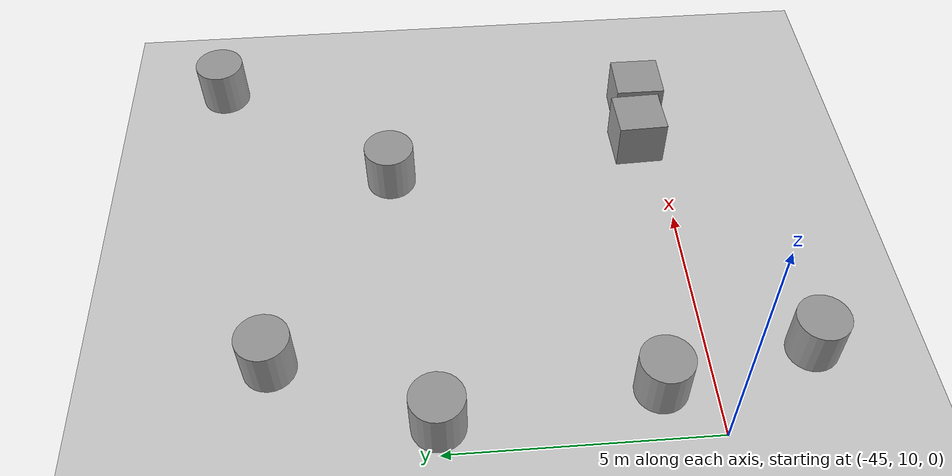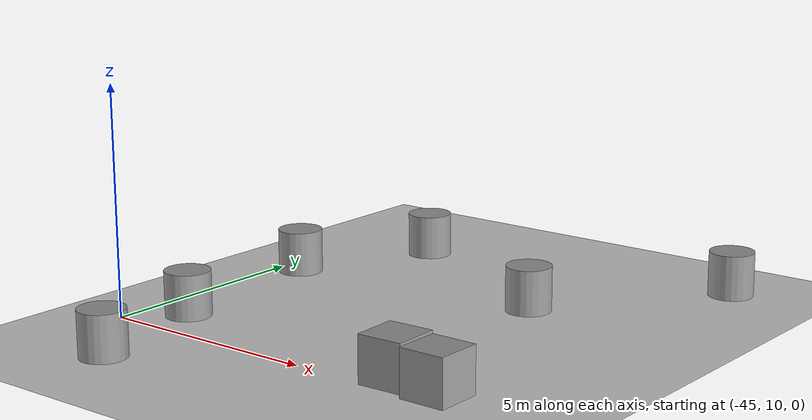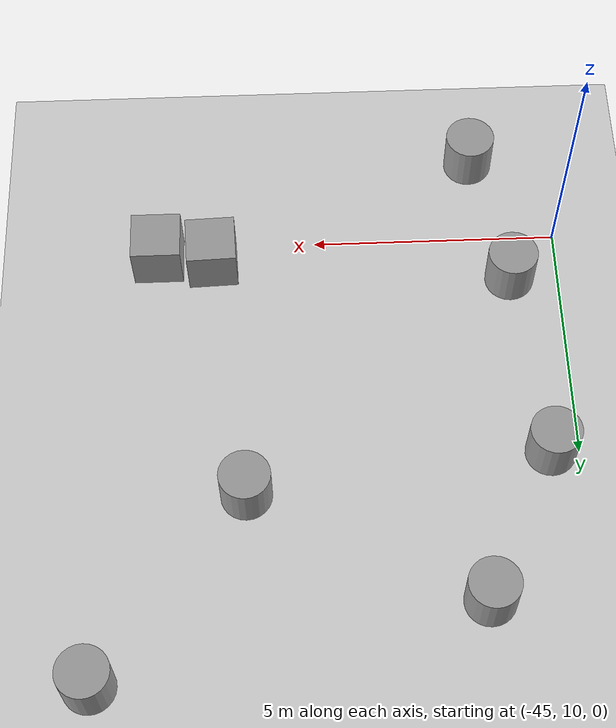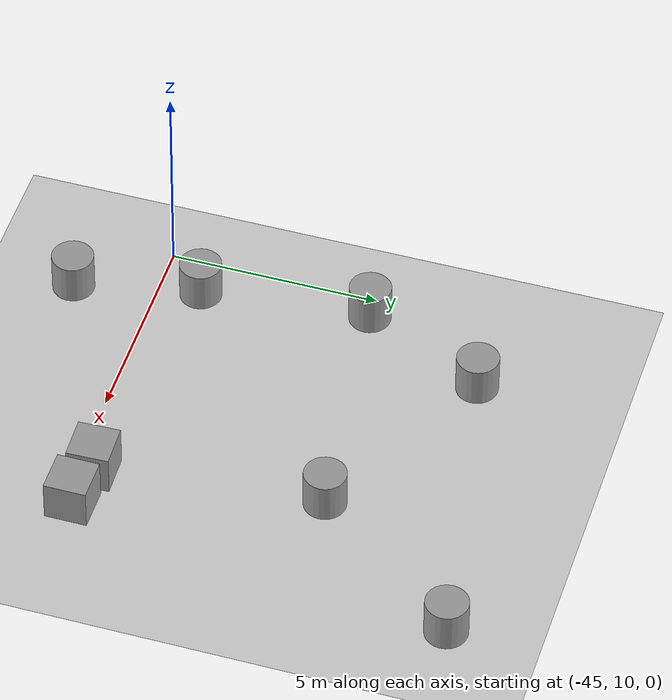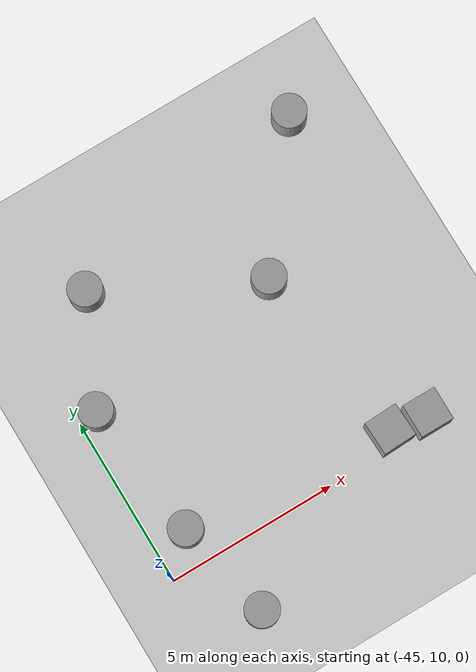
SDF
<sdf version="1.6">
 <world name="default">
  <model name="ground_plane">
   <static>1</static>
   <link name="link">
    <collision name="collision">
     <geometry><plane><normal>0 0 1</normal><size>100 100</size></plane></geometry>
     <surface><friction><ode><mu>100</mu><mu2>50</mu2></ode></friction></surface>
    </collision>
    <visual name="visual">
     <cast_shadows>0</cast_shadows>
     <geometry><plane><normal>0 0 1</normal><size>100 100</size></plane></geometry>
     <material>
      <script><uri>file://media/materials/scripts/gazebo.material</uri><name>Gazebo/Grey</name></script>
     </material>
    </visual>
   </link>
  </model>
  <model name="unit_cylinder_11_clone_19">
   <pose>-35.6542 19.3672 0.500501 3e-06 -0 -0.000386</pose>
   <link name="link">
    <inertial>
     <mass>1</mass>
     <inertia><ixx>0.145833</ixx><ixy>0</ixy><ixz>0</ixz><iyy>0.145833</iyy><iyz>0</iyz><izz>0.125</izz></inertia>
    </inertial>
    <collision name="collision">
     <geometry><cylinder><radius>0.5</radius><length>1</length></cylinder></geometry>
    </collision>
    <visual name="visual">
     <geometry><cylinder><radius>0.5</radius><length>1</length></cylinder></geometry>
     <material>
      <script><name>Gazebo/Grey</name><uri>file://media/materials/scripts/gazebo.material</uri></script>
     </material>
    </visual>
   </link>
  </model>
  <model name="unit_cylinder_11_clone_20">
   <pose>-38.521 15.7062 0.5005 0 0 -3.4e-05</pose>
   <link name="link">
    <inertial>
     <mass>1</mass>
     <inertia><ixx>0.145833</ixx><ixy>0</ixy><ixz>0</ixz><iyy>0.145833</iyy><iyz>0</iyz><izz>0.125</izz></inertia>
    </inertial>
    <collision name="collision">
     <geometry><cylinder><radius>0.5</radius><length>1</length></cylinder></geometry>
    </collision>
    <visual name="visual">
     <geometry><cylinder><radius>0.5</radius><length>1</length></cylinder></geometry>
     <material>
      <script><name>Gazebo/Grey</name><uri>file://media/materials/scripts/gazebo.material</uri></script>
     </material>
    </visual>
   </link>
  </model>
  <model name="unit_cylinder_11_clone_27">
   <pose>-43.0002 18 0.500489 -2e-06 -0 -0.000355</pose>
   <link name="link">
    <inertial>
     <mass>1</mass>
     <inertia><ixx>0.145833</ixx><ixy>0</ixy><ixz>0</ixz><iyy>0.145833</iyy><iyz>0</iyz><izz>0.125</izz></inertia>
    </inertial>
    <collision name="collision">
     <geometry><cylinder><radius>0.5</radius><length>1</length></cylinder></geometry>
    </collision>
    <visual name="visual">
     <geometry><cylinder><radius>0.5</radius><length>1</length></cylinder></geometry>
     <material>
      <script><name>Gazebo/Grey</name><uri>file://media/materials/scripts/gazebo.material</uri></script>
     </material>
    </visual>
   </link>
  </model>
  <model name="unit_cylinder_11_clone_28">
   <pose>-44.4366 15.0001 0.50049 -0 -0 -3.2e-05</pose>
   <link name="link">
    <inertial>
     <mass>1</mass>
     <inertia><ixx>0.145833</ixx><ixy>0</ixy><ixz>0</ixz><iyy>0.145833</iyy><iyz>0</iyz><izz>0.125</izz></inertia>
    </inertial>
    <collision name="collision">
     <geometry><cylinder><radius>0.5</radius><length>1</length></cylinder></geometry>
    </collision>
    <visual name="visual">
     <geometry><cylinder><radius>0.5</radius><length>1</length></cylinder></geometry>
     <material>
      <script><name>Gazebo/Grey</name><uri>file://media/materials/scripts/gazebo.material</uri></script>
     </material>
    </visual>
   </link>
  </model>
  <model name="unit_cylinder_11_clone_29">
   <pose>-44 11 0.499991 -0 -0 -0</pose>
   <link name="link">
    <inertial>
     <mass>1</mass>
     <inertia><ixx>0.145833</ixx><ixy>0</ixy><ixz>0</ixz><iyy>0.145833</iyy><iyz>0</iyz><izz>0.125</izz></inertia>
    </inertial>
    <collision name="collision">
     <geometry><cylinder><radius>0.5</radius><length>1</length></cylinder></geometry>
    </collision>
    <visual name="visual">
     <geometry><cylinder><radius>0.5</radius><length>1</length></cylinder></geometry>
     <material>
      <script><name>Gazebo/Grey</name><uri>file://media/materials/scripts/gazebo.material</uri></script>
     </material>
    </visual>
   </link>
  </model>
  <model name="unit_cylinder_11_clone_30">
   <pose>-43.3615 8.06997 0.5 0 -0 0</pose>
   <link name="link">
    <inertial>
     <mass>1</mass>
     <inertia><ixx>0.145833</ixx><ixy>0</ixy><ixz>0</ixz><iyy>0.145833</iyy><iyz>0</iyz><izz>0.125</izz></inertia>
    </inertial>
    <collision name="collision">
     <geometry><cylinder><radius>0.5</radius><length>1</length></cylinder></geometry>
    </collision>
    <visual name="visual">
     <geometry><cylinder><radius>0.5</radius><length>1</length></cylinder></geometry>
     <material>
      <script><name>Gazebo/Grey</name><uri>file://media/materials/scripts/gazebo.material</uri></script>
     </material>
    </visual>
   </link>
  </model>
  <model name="unit_box_28_clone_50_clone_29">
   <pose>-37.8885 10.4324 0.5 0 -0 0.036334</pose>
   <link name="link">
    <inertial>
     <mass>1</mass>
     <inertia>
      <ixx>0.166667</ixx>
      <ixy>0</ixy>
      <ixz>0</ixz>
      <iyy>0.166667</iyy>
      <iyz>0</iyz>
      <izz>0.166667</izz>
     </inertia>
    </inertial>
    <collision name="collision"><geometry><box><size>1 1 1</size></box></geometry></collision>
    <visual name="visual">
     <geometry><box><size>1 1 1</size></box></geometry>
     <material>
      <script><name>Gazebo/Grey</name><uri>file://media/materials/scripts/gazebo.material</uri></script>
     </material>
    </visual>
   </link>
  </model>
  <model name="unit_box_28_clone_50_clone_30">
   <pose>-36.7764 10.294 0.5 0 -0 0</pose>
   <link name="link">
    <inertial>
     <mass>1</mass>
     <inertia>
      <ixx>0.166667</ixx>
      <ixy>0</ixy>
      <ixz>0</ixz>
      <iyy>0.166667</iyy>
      <iyz>0</iyz>
      <izz>0.166667</izz>
     </inertia>
    </inertial>
    <collision name="collision"><geometry><box><size>1 1 1</size></box></geometry></collision>
    <visual name="visual">
     <geometry><box><size>1 1 1</size></box></geometry>
     <material>
      <script><name>Gazebo/Grey</name><uri>file://media/materials/scripts/gazebo.material</uri></script>
     </material>
    </visual>
   </link>
  </model>
 </world>
</sdf>
